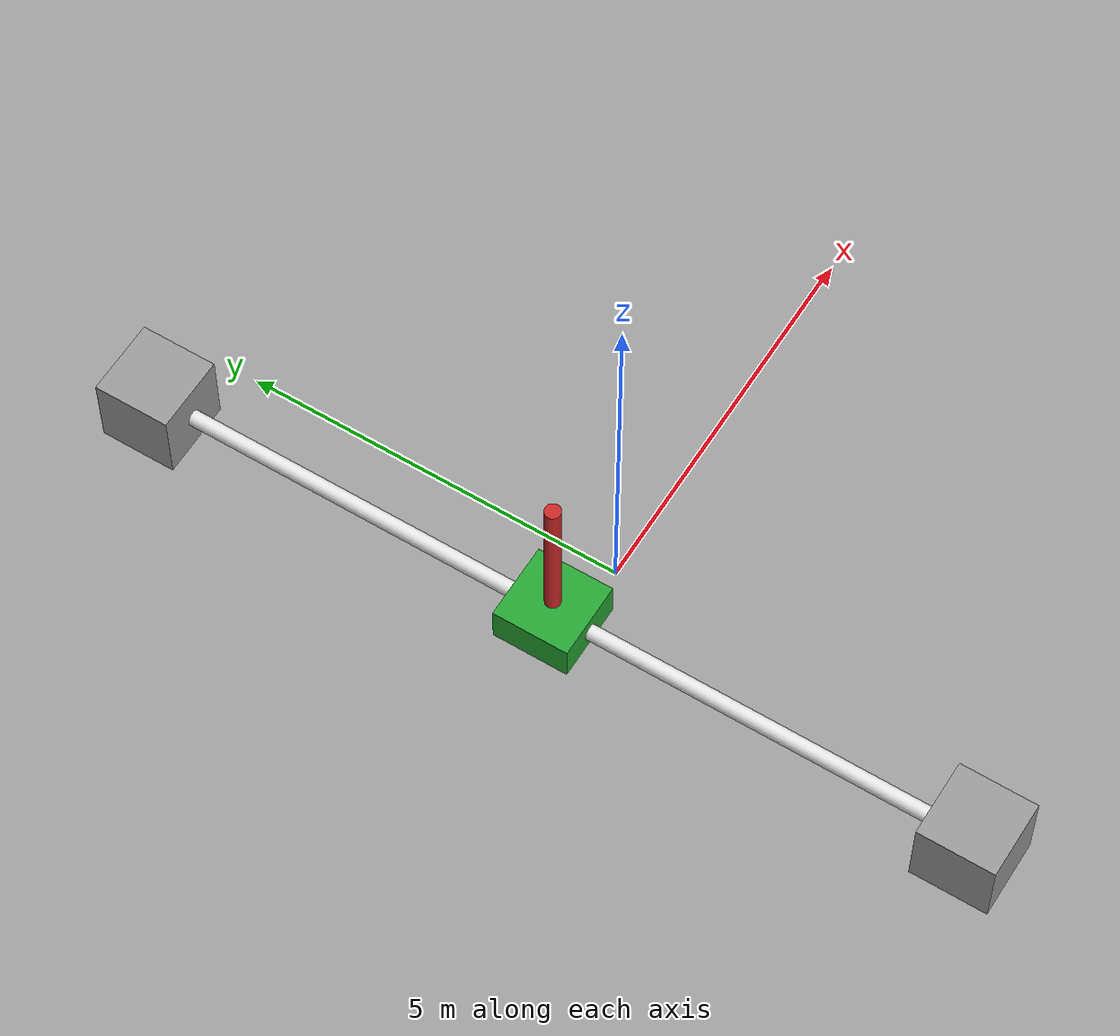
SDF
<?xml version='1.0'?>
<sdf version='1.7'>
  <model name='Polecart2_ros'>
    <link name='rail'>
      <inertial>
        <mass>1</mass>
        <inertia>
          <ixx>0.145833</ixx>
          <ixy>0</ixy>
          <ixz>0</ixz>
          <iyy>0.145833</iyy>
          <iyz>0</iyz>
          <izz>0.125</izz>
        </inertia>
        <pose>0 0 0 0 -0 0</pose>
      </inertial>
      <pose>-0.818705 0.351563 0 1.5708 -0 0</pose>
      <gravity>1</gravity>
      <self_collide>0</self_collide>
      <kinematic>0</kinematic>
      <enable_wind>0</enable_wind>
      <visual name='visual'>
        <pose>0 0 0 0 -0 0</pose>
        <geometry>
          <cylinder>
            <radius>0.1</radius>
            <length>10</length>
          </cylinder>
        </geometry>
        <material>
          <lighting>1</lighting>
          <script>
            <uri>file://media/materials/scripts/gazebo.material</uri>
            <name>Gazebo/White</name>
          </script>
          <shader type='pixel'>
            <normal_map>__default__</normal_map>
          </shader>
          <ambient>1 1 1 1</ambient>
          <diffuse>1 1 1 1</diffuse>
          <specular>0.01 0.01 0.01 1</specular>
          <emissive>0 0 0 1</emissive>
        </material>
        <transparency>0</transparency>
        <cast_shadows>1</cast_shadows>
      </visual>
      <collision name='collision'>
        <laser_retro>0</laser_retro>
        <max_contacts>10</max_contacts>
        <pose>0 0 0 0 -0 0</pose>
        <geometry>
          <cylinder>
            <radius>0.1</radius>
            <length>10</length>
          </cylinder>
        </geometry>
        <surface>
          <friction>
            <ode>
              <mu>1</mu>
              <mu2>1</mu2>
              <fdir1>0 0 0</fdir1>
              <slip1>0</slip1>
              <slip2>0</slip2>
            </ode>
            <torsional>
              <coefficient>1</coefficient>
              <patch_radius>0</patch_radius>
              <surface_radius>0</surface_radius>
              <use_patch_radius>1</use_patch_radius>
              <ode>
                <slip>0</slip>
              </ode>
            </torsional>
          </friction>
          <bounce>
            <restitution_coefficient>0</restitution_coefficient>
            <threshold>1e+06</threshold>
          </bounce>
          <contact>
            <collide_without_contact>0</collide_without_contact>
            <collide_without_contact_bitmask>1</collide_without_contact_bitmask>
            <collide_bitmask>1</collide_bitmask>
            <ode>
              <soft_cfm>0</soft_cfm>
              <soft_erp>0.2</soft_erp>
              <kp>1e+13</kp>
              <kd>1</kd>
              <max_vel>0.01</max_vel>
              <min_depth>0</min_depth>
            </ode>
            <bullet>
              <split_impulse>1</split_impulse>
              <split_impulse_penetration_threshold>-0.01</split_impulse_penetration_threshold>
              <soft_cfm>0</soft_cfm>
              <soft_erp>0.2</soft_erp>
              <kp>1e+13</kp>
              <kd>1</kd>
            </bullet>
          </contact>
        </surface>
      </collision>
    </link>
    <link name='mass_1'>
      <inertial>
        <mass>2000</mass>
        <inertia>
          <ixx>333.333</ixx>
          <ixy>0</ixy>
          <ixz>0</ixz>
          <iyy>333.333</iyy>
          <iyz>0</iyz>
          <izz>333.333</izz>
        </inertia>
        <pose>0 0 0 0 -0 0</pose>
      </inertial>
      <pose>-0.818705 -5.14844 -2e-05 0 -0 0</pose>
      <gravity>1</gravity>
      <self_collide>0</self_collide>
      <kinematic>0</kinematic>
      <enable_wind>0</enable_wind>
      <visual name='visual'>
        <pose>0 0 0 0 -0 0</pose>
        <geometry>
          <box>
            <size>1 1 1</size>
          </box>
        </geometry>
        <material>
          <lighting>1</lighting>
          <script>
            <uri>file://media/materials/scripts/gazebo.material</uri>
            <name>Gazebo/Grey</name>
          </script>
          <shader type='pixel'>
            <normal_map>__default__</normal_map>
          </shader>
          <emissive>0 0 0 1</emissive>
        </material>
        <transparency>0</transparency>
        <cast_shadows>1</cast_shadows>
      </visual>
      <collision name='collision'>
        <laser_retro>0</laser_retro>
        <max_contacts>10</max_contacts>
        <pose>0 0 0 0 -0 0</pose>
        <geometry>
          <box>
            <size>1 1 1</size>
          </box>
        </geometry>
        <surface>
          <friction>
            <ode>
              <mu>1</mu>
              <mu2>1</mu2>
              <fdir1>0 0 0</fdir1>
              <slip1>0</slip1>
              <slip2>0</slip2>
            </ode>
            <torsional>
              <coefficient>1</coefficient>
              <patch_radius>0</patch_radius>
              <surface_radius>0</surface_radius>
              <use_patch_radius>1</use_patch_radius>
              <ode>
                <slip>0</slip>
              </ode>
            </torsional>
          </friction>
          <bounce>
            <restitution_coefficient>0</restitution_coefficient>
            <threshold>1e+06</threshold>
          </bounce>
          <contact>
            <collide_without_contact>0</collide_without_contact>
            <collide_without_contact_bitmask>1</collide_without_contact_bitmask>
            <collide_bitmask>1</collide_bitmask>
            <ode>
              <soft_cfm>0</soft_cfm>
              <soft_erp>0.2</soft_erp>
              <kp>1e+13</kp>
              <kd>1</kd>
              <max_vel>0.01</max_vel>
              <min_depth>0</min_depth>
            </ode>
            <bullet>
              <split_impulse>1</split_impulse>
              <split_impulse_penetration_threshold>-0.01</split_impulse_penetration_threshold>
              <soft_cfm>0</soft_cfm>
              <soft_erp>0.2</soft_erp>
              <kp>1e+13</kp>
              <kd>1</kd>
            </bullet>
          </contact>
        </surface>
      </collision>
    </link>
    <link name='mass_2'>
      <inertial>
        <mass>2000</mass>
        <inertia>
          <ixx>333.333</ixx>
          <ixy>0</ixy>
          <ixz>0</ixz>
          <iyy>333.333</iyy>
          <iyz>0</iyz>
          <izz>333.333</izz>
        </inertia>
        <pose>0 0 0 0 -0 0</pose>
      </inertial>
      <pose>-0.818705 5.85156 2e-05 0 -0 0</pose>
      <gravity>1</gravity>
      <self_collide>0</self_collide>
      <kinematic>0</kinematic>
      <enable_wind>0</enable_wind>
      <visual name='visual'>
        <pose>0 0 0 0 -0 0</pose>
        <geometry>
          <box>
            <size>1 1 1</size>
          </box>
        </geometry>
        <material>
          <lighting>1</lighting>
          <script>
            <uri>file://media/materials/scripts/gazebo.material</uri>
            <name>Gazebo/Grey</name>
          </script>
          <shader type='pixel'>
            <normal_map>__default__</normal_map>
          </shader>
          <emissive>0 0 0 1</emissive>
        </material>
        <transparency>0</transparency>
        <cast_shadows>1</cast_shadows>
      </visual>
      <collision name='collision'>
        <laser_retro>0</laser_retro>
        <max_contacts>10</max_contacts>
        <pose>0 0 0 0 -0 0</pose>
        <geometry>
          <box>
            <size>1 1 1</size>
          </box>
        </geometry>
        <surface>
          <friction>
            <ode>
              <mu>1</mu>
              <mu2>1</mu2>
              <fdir1>0 0 0</fdir1>
              <slip1>0</slip1>
              <slip2>0</slip2>
            </ode>
            <torsional>
              <coefficient>1</coefficient>
              <patch_radius>0</patch_radius>
              <surface_radius>0</surface_radius>
              <use_patch_radius>1</use_patch_radius>
              <ode>
                <slip>0</slip>
              </ode>
            </torsional>
          </friction>
          <bounce>
            <restitution_coefficient>0</restitution_coefficient>
            <threshold>1e+06</threshold>
          </bounce>
          <contact>
            <collide_without_contact>0</collide_without_contact>
            <collide_without_contact_bitmask>1</collide_without_contact_bitmask>
            <collide_bitmask>1</collide_bitmask>
            <ode>
              <soft_cfm>0</soft_cfm>
              <soft_erp>0.2</soft_erp>
              <kp>1e+13</kp>
              <kd>1</kd>
              <max_vel>0.01</max_vel>
              <min_depth>0</min_depth>
            </ode>
            <bullet>
              <split_impulse>1</split_impulse>
              <split_impulse_penetration_threshold>-0.01</split_impulse_penetration_threshold>
              <soft_cfm>0</soft_cfm>
              <soft_erp>0.2</soft_erp>
              <kp>1e+13</kp>
              <kd>1</kd>
            </bullet>
          </contact>
        </surface>
      </collision>
    </link>
    <link name='cart'>
      <inertial>
        <mass>1</mass>
        <inertia>
          <ixx>0.166667</ixx>
          <ixy>0</ixy>
          <ixz>0</ixz>
          <iyy>0.166667</iyy>
          <iyz>0</iyz>
          <izz>0.166667</izz>
        </inertia>
        <pose>0 0 0 0 -0 0</pose>
      </inertial>
      <pose>-0.818705 0.351563 0 0 -0 0</pose>
      <gravity>1</gravity>
      <self_collide>1</self_collide>
      <kinematic>0</kinematic>
      <enable_wind>0</enable_wind>
      <visual name='visual'>
        <pose>0 0 0 0 -0 0</pose>
        <geometry>
          <box>
            <size>1 1 0.5</size>
          </box>
        </geometry>
        <material>
          <lighting>1</lighting>
          <script>
            <uri>file://media/materials/scripts/gazebo.material</uri>
            <name>Gazebo/Green</name>
          </script>
          <shader type='pixel'>
            <normal_map>__default__</normal_map>
          </shader>
          <ambient>0 1 0 1</ambient>
          <diffuse>0 1 0 1</diffuse>
          <specular>0.01 0.01 0.01 1</specular>
          <emissive>0 0 0 1</emissive>
        </material>
        <transparency>0</transparency>
        <cast_shadows>1</cast_shadows>
      </visual>
      <collision name='collision'>
        <laser_retro>0</laser_retro>
        <max_contacts>10</max_contacts>
        <pose>0 0 0 0 -0 0</pose>
        <geometry>
          <box>
            <size>1 1 0.5</size>
          </box>
        </geometry>
        <surface>
          <friction>
            <ode>
              <mu>1</mu>
              <mu2>1</mu2>
              <fdir1>0 0 0</fdir1>
              <slip1>0</slip1>
              <slip2>0</slip2>
            </ode>
            <torsional>
              <coefficient>1</coefficient>
              <patch_radius>0</patch_radius>
              <surface_radius>0</surface_radius>
              <use_patch_radius>1</use_patch_radius>
              <ode>
                <slip>0</slip>
              </ode>
            </torsional>
          </friction>
          <bounce>
            <restitution_coefficient>0</restitution_coefficient>
            <threshold>1e+06</threshold>
          </bounce>
          <contact>
            <collide_without_contact>0</collide_without_contact>
            <collide_without_contact_bitmask>1</collide_without_contact_bitmask>
            <collide_bitmask>1</collide_bitmask>
            <ode>
              <soft_cfm>0</soft_cfm>
              <soft_erp>0.2</soft_erp>
              <kp>1e+13</kp>
              <kd>1</kd>
              <max_vel>0.01</max_vel>
              <min_depth>0</min_depth>
            </ode>
            <bullet>
              <split_impulse>1</split_impulse>
              <split_impulse_penetration_threshold>-0.01</split_impulse_penetration_threshold>
              <soft_cfm>0</soft_cfm>
              <soft_erp>0.2</soft_erp>
              <kp>1e+13</kp>
              <kd>1</kd>
            </bullet>
          </contact>
        </surface>
      </collision>
    </link>
    <link name='pole'>
      <inertial>
        <mass>1</mass>
        <inertia>
          <ixx>0.145833</ixx>
          <ixy>0</ixy>
          <ixz>0</ixz>
          <iyy>0.145833</iyy>
          <iyz>0</iyz>
          <izz>0.125</izz>
        </inertia>
        <pose>0 0 0 0 -0 0</pose>
      </inertial>
      <pose>-0.818705 0.351563 1.25 1e-06 -0 6e-06</pose>
      <gravity>1</gravity>
      <self_collide>1</self_collide>
      <kinematic>0</kinematic>
      <enable_wind>0</enable_wind>
      <visual name='visual'>
        <pose>0 0 0 0 -0 0</pose>
        <geometry>
          <cylinder>
            <radius>0.1</radius>
            <length>2</length>
          </cylinder>
        </geometry>
        <material>
          <lighting>1</lighting>
          <script>
            <uri>file://media/materials/scripts/gazebo.material</uri>
            <name>Gazebo/Red</name>
          </script>
          <shader type='pixel'>
            <normal_map>__default__</normal_map>
          </shader>
          <ambient>1 0 0 1</ambient>
          <diffuse>1 0 0 1</diffuse>
          <specular>0.01 0.01 0.01 1</specular>
          <emissive>0 0 0 1</emissive>
        </material>
        <transparency>0</transparency>
        <cast_shadows>1</cast_shadows>
      </visual>
      <collision name='collision'>
        <laser_retro>0</laser_retro>
        <max_contacts>10</max_contacts>
        <pose>0 0 0 0 -0 0</pose>
        <geometry>
          <cylinder>
            <radius>0.1</radius>
            <length>2</length>
          </cylinder>
        </geometry>
        <surface>
          <friction>
            <ode>
              <mu>1</mu>
              <mu2>1</mu2>
              <fdir1>0 0 0</fdir1>
              <slip1>0</slip1>
              <slip2>0</slip2>
            </ode>
            <torsional>
              <coefficient>1</coefficient>
              <patch_radius>0</patch_radius>
              <surface_radius>0</surface_radius>
              <use_patch_radius>1</use_patch_radius>
              <ode>
                <slip>0</slip>
              </ode>
            </torsional>
          </friction>
          <bounce>
            <restitution_coefficient>0</restitution_coefficient>
            <threshold>1e+06</threshold>
          </bounce>
          <contact>
            <collide_without_contact>0</collide_without_contact>
            <collide_without_contact_bitmask>1</collide_without_contact_bitmask>
            <collide_bitmask>1</collide_bitmask>
            <ode>
              <soft_cfm>0</soft_cfm>
              <soft_erp>0.2</soft_erp>
              <kp>1e+13</kp>
              <kd>1</kd>
              <max_vel>0.01</max_vel>
              <min_depth>0</min_depth>
            </ode>
            <bullet>
              <split_impulse>1</split_impulse>
              <split_impulse_penetration_threshold>-0.01</split_impulse_penetration_threshold>
              <soft_cfm>0</soft_cfm>
              <soft_erp>0.2</soft_erp>
              <kp>1e+13</kp>
              <kd>1</kd>
            </bullet>
          </contact>
        </surface>
      </collision>
    </link>
    <joint name='rail_post_1' type='fixed'>
      <parent>rail</parent>
      <child>mass_1</child>
      <pose>0 0 0 0 -0 0</pose>
      <physics>
        <ode>
          <limit>
            <cfm>0</cfm>
            <erp>0.2</erp>
          </limit>
          <suspension>
            <cfm>0</cfm>
            <erp>0.2</erp>
          </suspension>
        </ode>
      </physics>
    </joint>
    <joint name='rail_post_2' type='fixed'>
      <parent>rail</parent>
      <child>mass_2</child>
      <pose>0 0 0 0 -0 0</pose>
      <physics>
        <ode>
          <limit>
            <cfm>0</cfm>
            <erp>0.2</erp>
          </limit>
          <suspension>
            <cfm>0</cfm>
            <erp>0.2</erp>
          </suspension>
        </ode>
      </physics>
    </joint>
    <joint name='rail_cart_joint' type='prismatic'>
      <parent>rail</parent>
      <child>cart</child>
      <pose>0 0 0 0 -0 0</pose>
      <axis>
        <xyz>0 1 0</xyz>
        <limit>
          <lower>-1.79769e+308</lower>
          <upper>1.79769e+308</upper>
          <effort>-1</effort>
          <velocity>-1</velocity>
        </limit>
        <dynamics>
          <spring_reference>0</spring_reference>
          <spring_stiffness>0</spring_stiffness>
          <damping>0</damping>
          <friction>0</friction>
        </dynamics>
      </axis>
      <physics>
        <ode>
          <limit>
            <cfm>0</cfm>
            <erp>0.2</erp>
          </limit>
          <suspension>
            <cfm>0</cfm>
            <erp>0.2</erp>
          </suspension>
        </ode>
      </physics>
    </joint>
    <joint name='cart_pole_joint' type='revolute'>
      <parent>cart</parent>
      <child>pole</child>
      <pose>0 0 -1 0 -0 0</pose>
      <axis>
        <xyz>1 0 0</xyz>
        <limit>
          <lower>-1.79769e+308</lower>
          <upper>1.79769e+308</upper>
          <effort>-1</effort>
          <velocity>-1</velocity>
        </limit>
        <dynamics>
          <spring_reference>0</spring_reference>
          <spring_stiffness>0</spring_stiffness>
          <damping>0</damping>
        </dynamics>
      </axis>
      <physics>
        <ode>
          <limit>
            <cfm>0</cfm>
            <erp>0.2</erp>
          </limit>
          <suspension>
            <cfm>0</cfm>
            <erp>0.2</erp>
          </suspension>
        </ode>
      </physics>
    </joint>

      <plugin name="gazebo_ros_force" filename="libgazebo_ros_force.so">
        <ros>
          <namespace>/cart</namespace>
          <remapping>gazebo_ros_force:=force</remapping>
        </ros>
        <link_name>cart</link_name>
        <force_frame>link</force_frame>
      </plugin>

        <plugin name="gazebo_ros_joint_state_publisher"
          filename="libgazebo_ros_joint_state_publisher.so">
        <ros>
          <namespace>/demo</namespace>
          <remapping>joint_states:=joint_states_demo</remapping>
        </ros>
        <update_rate>20</update_rate>
        <joint_name>cart_pole_joint</joint_name>
      </plugin>

    <static>0</static>
    <allow_auto_disable>1</allow_auto_disable>
  </model>
</sdf>
